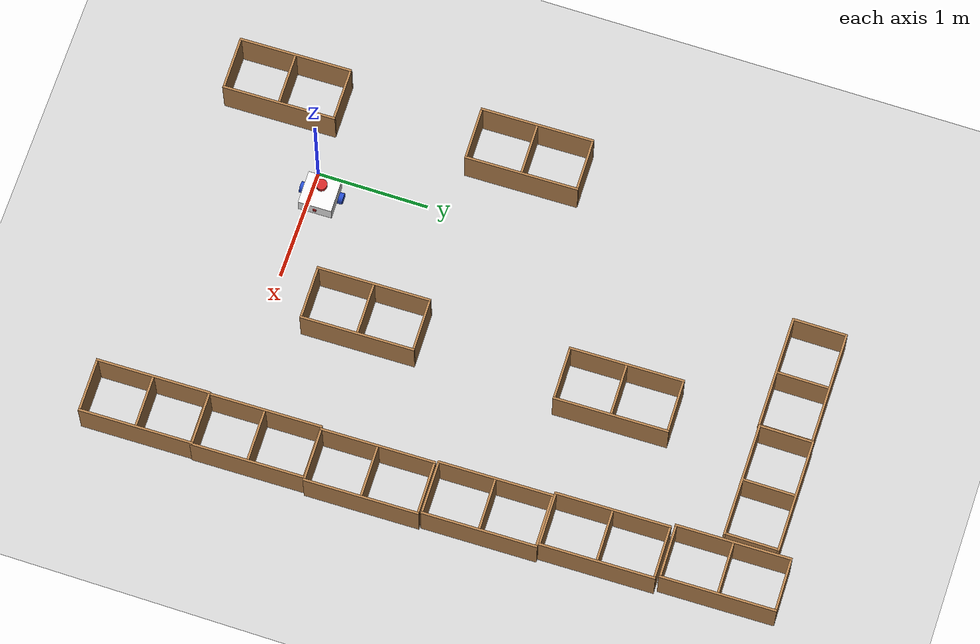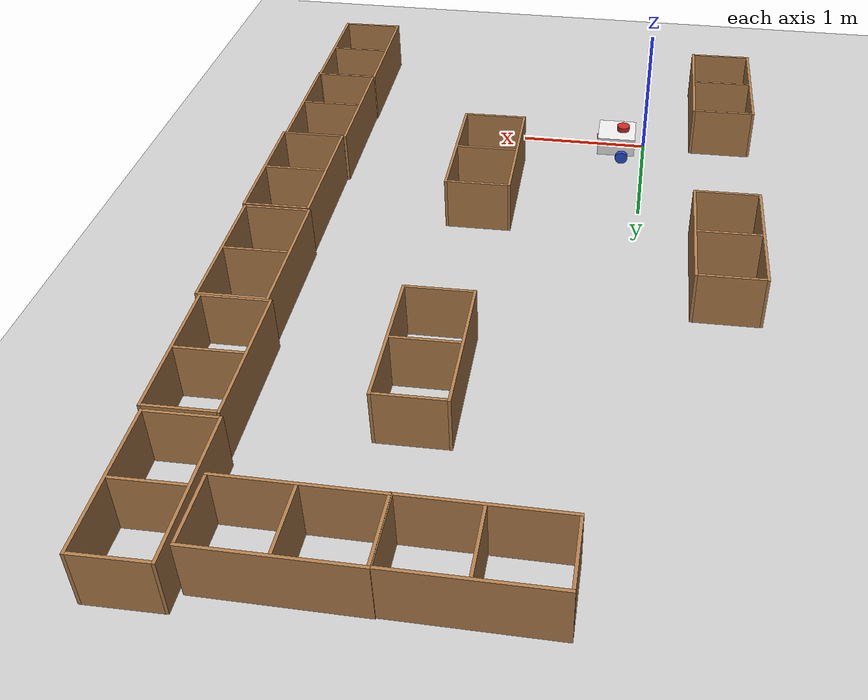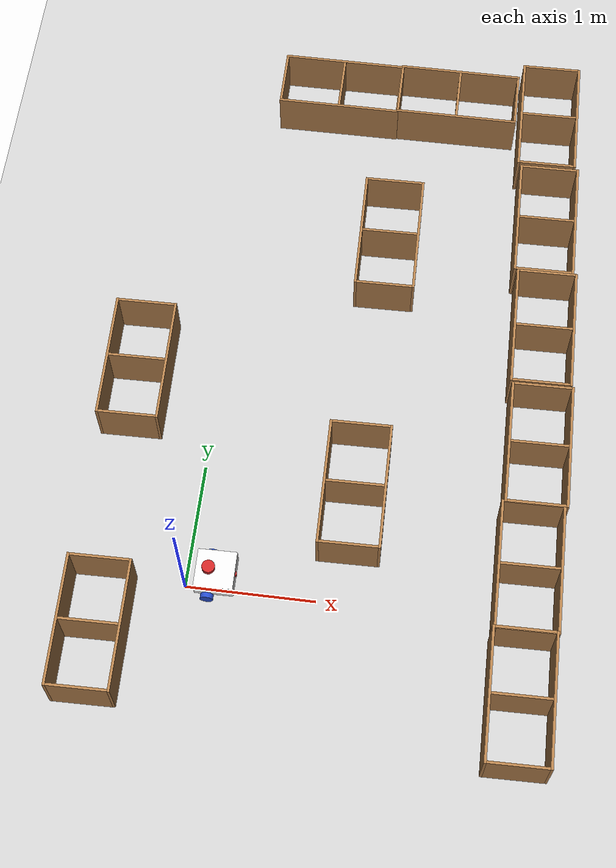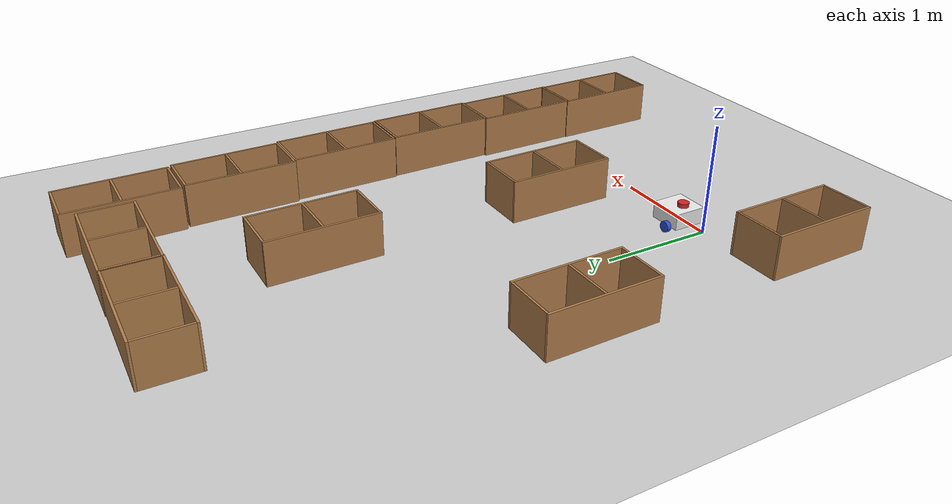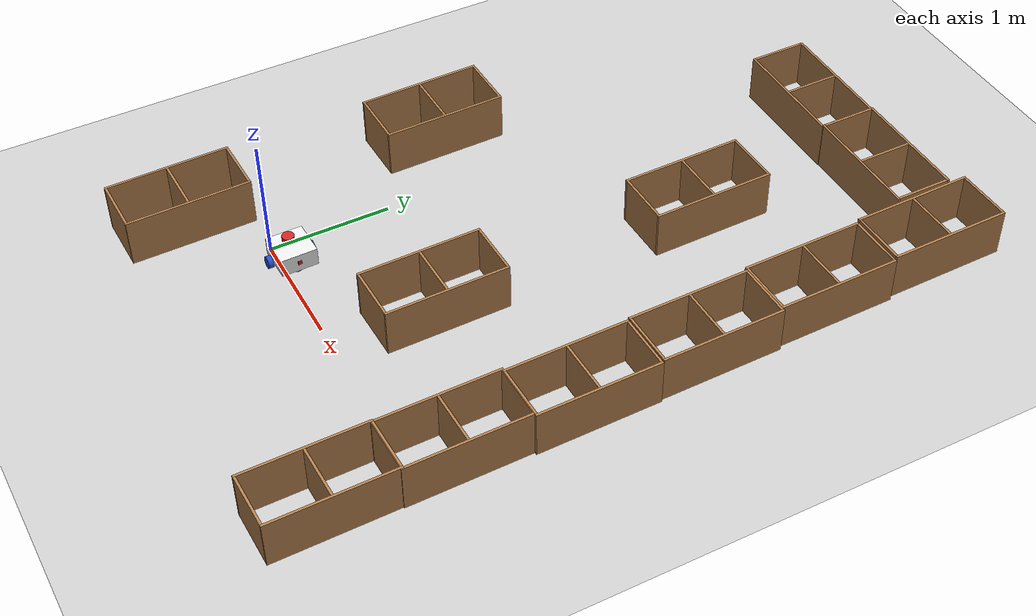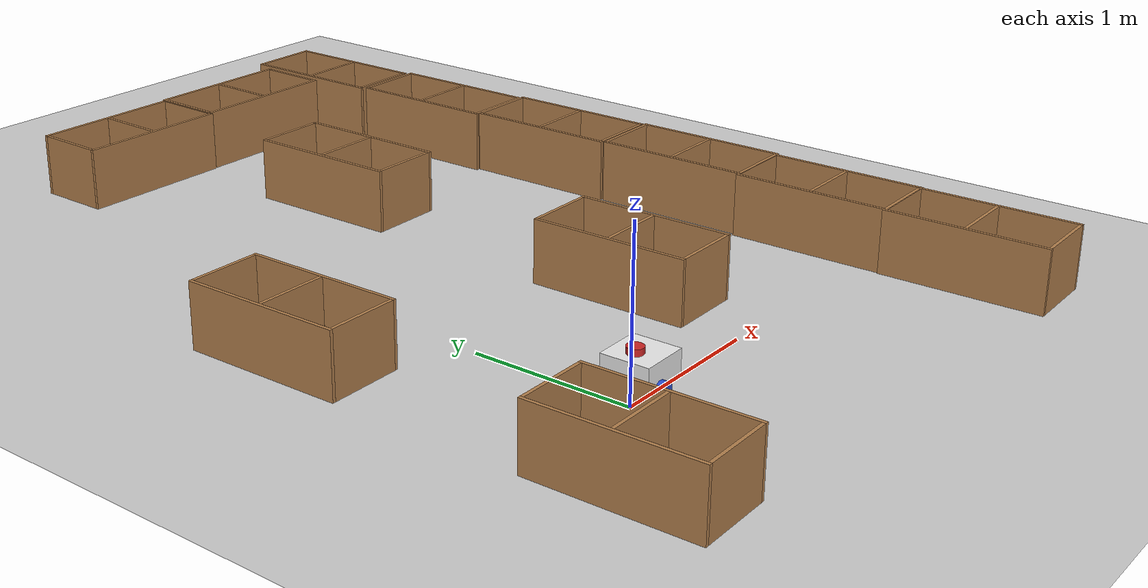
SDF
<sdf version="1.7">
 <world name="default">
  <model name="ground_plane">
   <static>1</static>
   <link name="link">
    <collision name="collision">
     <geometry><plane><normal>0 0 1</normal><size>100 100</size></plane></geometry>
     <surface>
      <contact><collide_bitmask>65535</collide_bitmask></contact>
      <friction><ode><mu>100</mu><mu2>50</mu2></ode></friction>
     </surface>
    </collision>
    <visual name="visual">
     <cast_shadows>0</cast_shadows>
     <geometry><plane><normal>0 0 1</normal><size>100 100</size></plane></geometry>
     <material>
      <script><uri>file://media/materials/scripts/gazebo.material</uri><name>Gazebo/Grey</name></script>
     </material>
    </visual>
   </link>
  </model>
  <model name="my_bot">
   <link name="base_link">
    <inertial>
     <pose>0.055714 0 0.078571 0 -0 0</pose>
     <mass>0.7</mass>
     <inertia>
      <ixx>0.0064169</ixx>
      <ixy>0</ixy>
      <ixz>0.00118929</ixz>
      <iyy>0.00745405</iyy>
      <iyz>0</iyz>
      <izz>0.00876214</izz>
     </inertia>
    </inertial>
    <collision name="base_link_fixed_joint_lump__chassis_collision">
     <pose>0.05 0 0.075 0 -0 0</pose>
     <geometry><box><size>0.3 0.3 0.15</size></box></geometry>
    </collision>
    <collision name="base_link_fixed_joint_lump__caster_wheel_collision_1">
     <pose>0.14 0 0 0 -0 0</pose>
     <geometry><sphere><radius>0.05</radius></sphere></geometry>
     <surface><friction><ode><mu>0.001</mu><mu2>0.001</mu2></ode></friction></surface>
    </collision>
    <collision name="base_link_fixed_joint_lump__laser_frame_collision_2">
     <pose>0 0 0.175 0 -0 0</pose>
     <geometry><cylinder><length>0.04</length><radius>0.05</radius></cylinder></geometry>
    </collision>
    <visual name="base_link_fixed_joint_lump__chassis_visual">
     <pose>0.05 0 0.075 0 -0 0</pose>
     <geometry><box><size>0.3 0.3 0.15</size></box></geometry>
     <material>
      <script><name>Gazebo/White</name><uri>file://media/materials/scripts/gazebo.material</uri></script>
     </material>
    </visual>
    <visual name="base_link_fixed_joint_lump__camera_link_visual_1">
     <pose>0.205 0 0.08 0 -0 0</pose>
     <geometry><box><size>0.01 0.03 0.03</size></box></geometry>
     <material>
      <script><name>Gazebo/Red</name><uri>file://media/materials/scripts/gazebo.material</uri></script>
     </material>
    </visual>
    <visual name="base_link_fixed_joint_lump__caster_wheel_visual_2">
     <pose>0.14 0 0 0 -0 0</pose>
     <geometry><sphere><radius>0.05</radius></sphere></geometry>
     <material>
      <script><name>Gazebo/Black</name><uri>file://media/materials/scripts/gazebo.material</uri></script>
     </material>
    </visual>
    <visual name="base_link_fixed_joint_lump__laser_frame_visual_3">
     <pose>0 0 0.175 0 -0 0</pose>
     <geometry><cylinder><length>0.04</length><radius>0.05</radius></cylinder></geometry>
     <material>
      <script><name>Gazebo/Red</name><uri>file://media/materials/scripts/gazebo.material</uri></script>
     </material>
    </visual>
    <sensor name="camera" type="camera">
     <visualize>1</visualize>
     <update_rate>10</update_rate>
     <camera>
      <horizontal_fov>1.089</horizontal_fov>
      <image><format>R8G8B8</format><width>640</width><height>480</height></image>
      <clip><near>0.05</near><far>8</far></clip>
     </camera>
     <plugin name="camera_controller" filename="libgazebo_ros_camera.so">
      <frame_name>camera_link_optical</frame_name>
     </plugin>
     <pose>0.205 0 0.08 0 -0 0</pose>
    </sensor>
    <sensor name="laser" type="ray">
     <visualize>1</visualize>
     <update_rate>10</update_rate>
     <ray>
      <scan>
       <horizontal>
        <samples>360</samples>
        <min_angle>-3.14</min_angle>
        <max_angle>3.14</max_angle>
        <resolution>1</resolution>
       </horizontal>
       <vertical><samples>1</samples><min_angle>0</min_angle><max_angle>0</max_angle></vertical>
      </scan>
      <range><min>0.3</min><max>12</max></range>
     </ray>
     <plugin name="laser_controller" filename="libgazebo_ros_ray_sensor.so">
      <ros><argument>~/out:=scan</argument></ros>
      <output_type>sensor_msgs/LaserScan</output_type>
      <frame_name>laser_frame</frame_name>
     </plugin>
     <pose>0 0 0.175 0 -0 0</pose>
    </sensor>
   </link>
   <joint name="left_wheel_joint" type="revolute">
    <pose relative_to="base_link">0 0.175 0 -1.5708 0 0</pose>
    <parent>base_link</parent>
    <child>left_wheel</child>
    <axis>
     <xyz>0 0 1</xyz>
     <limit><lower>-1e+16</lower><upper>1e+16</upper></limit>
     <dynamics><spring_reference>0</spring_reference><spring_stiffness>0</spring_stiffness></dynamics>
    </axis>
   </joint>
   <link name="left_wheel">
    <pose relative_to="left_wheel_joint">0 0 0 0 -0 0</pose>
    <inertial>
     <mass>0.1</mass>
     <inertia>
      <ixx>7.58333e-05</ixx>
      <ixy>0</ixy>
      <ixz>0</ixz>
      <iyy>7.58333e-05</iyy>
      <iyz>0</iyz>
      <izz>0.000125</izz>
     </inertia>
    </inertial>
    <collision name="left_wheel_collision">
     <geometry><cylinder><length>0.04</length><radius>0.05</radius></cylinder></geometry>
    </collision>
    <visual name="left_wheel_visual">
     <geometry><cylinder><length>0.04</length><radius>0.05</radius></cylinder></geometry>
     <material>
      <script><name>Gazebo/Blue</name><uri>file://media/materials/scripts/gazebo.material</uri></script>
     </material>
    </visual>
   </link>
   <joint name="right_wheel_joint" type="revolute">
    <pose relative_to="base_link">0 -0.175 0 1.5708 -0 0</pose>
    <parent>base_link</parent>
    <child>right_wheel</child>
    <axis>
     <xyz>0 0 -1</xyz>
     <limit><lower>-1e+16</lower><upper>1e+16</upper></limit>
     <dynamics><spring_reference>0</spring_reference><spring_stiffness>0</spring_stiffness></dynamics>
    </axis>
   </joint>
   <link name="right_wheel">
    <pose relative_to="right_wheel_joint">0 0 0 0 -0 0</pose>
    <inertial>
     <mass>0.1</mass>
     <inertia>
      <ixx>7.58333e-05</ixx>
      <ixy>0</ixy>
      <ixz>0</ixz>
      <iyy>7.58333e-05</iyy>
      <iyz>0</iyz>
      <izz>0.000125</izz>
     </inertia>
    </inertial>
    <collision name="right_wheel_collision">
     <geometry><cylinder><length>0.04</length><radius>0.05</radius></cylinder></geometry>
    </collision>
    <visual name="right_wheel_visual">
     <geometry><cylinder><length>0.04</length><radius>0.05</radius></cylinder></geometry>
     <material>
      <script><name>Gazebo/Blue</name><uri>file://media/materials/scripts/gazebo.material</uri></script>
     </material>
    </visual>
   </link>
   <static>0</static>
   <plugin name="diff_drive" filename="libgazebo_ros_diff_drive.so">
    <left_joint>left_wheel_joint</left_joint>
    <right_joint>right_wheel_joint</right_joint>
    <wheel_separation>0.35</wheel_separation>
    <wheel_diameter>0.1</wheel_diameter>
    <max_wheel_torque>200</max_wheel_torque>
    <max_wheel_acceleration>10.0</max_wheel_acceleration>
    <odometry_frame>odom</odometry_frame>
    <robot_base_frame>base_link</robot_base_frame>
    <publish_odom>1</publish_odom>
    <publish_odom_tf>1</publish_odom_tf>
    <publish_wheel_tf>1</publish_wheel_tf>
   </plugin>
   <pose>0.175855 0.097688 0.049998 -1.9e-05 -1.6e-05 0.014368</pose>
  </model>
  <model name="cabinet_clone_0_clone_3">
   <static>1</static>
   <link name="cabinet_bottom_plate">
    <inertial>
     <pose>0 0 -1 0 -0 0</pose>
     <inertia><ixx>2.05</ixx><ixy>0</ixy><ixz>0</ixz><iyy>2.05</iyy><iyz>0</iyz><izz>2.05</izz></inertia>
     <mass>25</mass>
    </inertial>
    <collision name="cabinet_bottom_plate_geom">
     <pose>0 0 0.01 0 -0 0</pose>
     <geometry><box><size>0.45 0.45 0.02</size></box></geometry>
    </collision>
    <visual name="cabinet_bottom_plate_geom_visual">
     <pose>0 0 0.01 0 -0 0</pose>
     <geometry><box><size>0.45 0.45 0.02</size></box></geometry>
     <material>
      <script><uri>file://media/materials/scripts/gazebo.material</uri><name>Gazebo/Wood</name></script>
     </material>
    </visual>
    <collision name="cabinet_bottom_plate_geom_cabinet_back_plate">
     <pose>0.235 0 0.51 0 -0 0</pose>
     <geometry><box><size>0.02 0.45 1.02</size></box></geometry>
    </collision>
    <visual name="cabinet_bottom_plate_geom_cabinet_back_plate_visual">
     <pose>0.235 0 0.51 0 -0 0</pose>
     <geometry><box><size>0.02 0.45 1.02</size></box></geometry>
     <material>
      <script><uri>file://media/materials/scripts/gazebo.material</uri><name>Gazebo/Wood</name></script>
     </material>
    </visual>
    <collision name="cabinet_bottom_plate_geom_cabinet_left_plate">
     <pose>0 0.235 0.51 0 -0 0</pose>
     <geometry><box><size>0.45 0.02 1.02</size></box></geometry>
    </collision>
    <visual name="cabinet_bottom_plate_geom_cabinet_left_plate_visual">
     <pose>0 0.235 0.51 0 -0 0</pose>
     <geometry><box><size>0.45 0.02 1.02</size></box></geometry>
     <material>
      <script><uri>file://media/materials/scripts/gazebo.material</uri><name>Gazebo/Wood</name></script>
     </material>
    </visual>
    <collision name="cabinet_bottom_plate_geom_cabinet_middle_plate">
     <pose>0 0 0.51 0 -0 0</pose>
     <geometry><box><size>0.45 0.45 0.02</size></box></geometry>
    </collision>
    <visual name="cabinet_bottom_plate_geom_cabinet_middle_plate_visual">
     <pose>0 0 0.51 0 -0 0</pose>
     <geometry><box><size>0.45 0.45 0.02</size></box></geometry>
     <material>
      <script><uri>file://media/materials/scripts/gazebo.material</uri><name>Gazebo/Wood</name></script>
     </material>
    </visual>
    <collision name="cabinet_bottom_plate_geom_cabinet_right_plate">
     <pose>0 -0.235 0.51 0 -0 0</pose>
     <geometry><box><size>0.45 0.02 1.02</size></box></geometry>
    </collision>
    <visual name="cabinet_bottom_plate_geom_cabinet_right_plate_visual">
     <pose>0 -0.235 0.51 0 -0 0</pose>
     <geometry><box><size>0.45 0.02 1.02</size></box></geometry>
     <material>
      <script><uri>file://media/materials/scripts/gazebo.material</uri><name>Gazebo/Wood</name></script>
     </material>
    </visual>
    <collision name="cabinet_bottom_plate_geom_cabinet_top_plate">
     <pose>0 0 1.01 0 -0 0</pose>
     <geometry><box><size>0.45 0.45 0.02</size></box></geometry>
    </collision>
    <visual name="cabinet_bottom_plate_geom_cabinet_top_plate_visual">
     <pose>0 0 1.01 0 -0 0</pose>
     <geometry><box><size>0.45 0.45 0.02</size></box></geometry>
     <material>
      <script><uri>file://media/materials/scripts/gazebo.material</uri><name>Gazebo/Wood</name></script>
     </material>
    </visual>
   </link>
   <pose>0.146838 4.55961 0.169718 3.14159 1.5658 3.14159</pose>
  </model>
  <model name="cabinet_clone_0_clone_4">
   <static>1</static>
   <link name="cabinet_bottom_plate">
    <inertial>
     <pose>0 0 -1 0 -0 0</pose>
     <inertia><ixx>2.05</ixx><ixy>0</ixy><ixz>0</ixz><iyy>2.05</iyy><iyz>0</iyz><izz>2.05</izz></inertia>
     <mass>25</mass>
    </inertial>
    <collision name="cabinet_bottom_plate_geom">
     <pose>0 0 0.01 0 -0 0</pose>
     <geometry><box><size>0.45 0.45 0.02</size></box></geometry>
    </collision>
    <visual name="cabinet_bottom_plate_geom_visual">
     <pose>0 0 0.01 0 -0 0</pose>
     <geometry><box><size>0.45 0.45 0.02</size></box></geometry>
     <material>
      <script><uri>file://media/materials/scripts/gazebo.material</uri><name>Gazebo/Wood</name></script>
     </material>
    </visual>
    <collision name="cabinet_bottom_plate_geom_cabinet_back_plate">
     <pose>0.235 0 0.51 0 -0 0</pose>
     <geometry><box><size>0.02 0.45 1.02</size></box></geometry>
    </collision>
    <visual name="cabinet_bottom_plate_geom_cabinet_back_plate_visual">
     <pose>0.235 0 0.51 0 -0 0</pose>
     <geometry><box><size>0.02 0.45 1.02</size></box></geometry>
     <material>
      <script><uri>file://media/materials/scripts/gazebo.material</uri><name>Gazebo/Wood</name></script>
     </material>
    </visual>
    <collision name="cabinet_bottom_plate_geom_cabinet_left_plate">
     <pose>0 0.235 0.51 0 -0 0</pose>
     <geometry><box><size>0.45 0.02 1.02</size></box></geometry>
    </collision>
    <visual name="cabinet_bottom_plate_geom_cabinet_left_plate_visual">
     <pose>0 0.235 0.51 0 -0 0</pose>
     <geometry><box><size>0.45 0.02 1.02</size></box></geometry>
     <material>
      <script><uri>file://media/materials/scripts/gazebo.material</uri><name>Gazebo/Wood</name></script>
     </material>
    </visual>
    <collision name="cabinet_bottom_plate_geom_cabinet_middle_plate">
     <pose>0 0 0.51 0 -0 0</pose>
     <geometry><box><size>0.45 0.45 0.02</size></box></geometry>
    </collision>
    <visual name="cabinet_bottom_plate_geom_cabinet_middle_plate_visual">
     <pose>0 0 0.51 0 -0 0</pose>
     <geometry><box><size>0.45 0.45 0.02</size></box></geometry>
     <material>
      <script><uri>file://media/materials/scripts/gazebo.material</uri><name>Gazebo/Wood</name></script>
     </material>
    </visual>
    <collision name="cabinet_bottom_plate_geom_cabinet_right_plate">
     <pose>0 -0.235 0.51 0 -0 0</pose>
     <geometry><box><size>0.45 0.02 1.02</size></box></geometry>
    </collision>
    <visual name="cabinet_bottom_plate_geom_cabinet_right_plate_visual">
     <pose>0 -0.235 0.51 0 -0 0</pose>
     <geometry><box><size>0.45 0.02 1.02</size></box></geometry>
     <material>
      <script><uri>file://media/materials/scripts/gazebo.material</uri><name>Gazebo/Wood</name></script>
     </material>
    </visual>
    <collision name="cabinet_bottom_plate_geom_cabinet_top_plate">
     <pose>0 0 1.01 0 -0 0</pose>
     <geometry><box><size>0.45 0.45 0.02</size></box></geometry>
    </collision>
    <visual name="cabinet_bottom_plate_geom_cabinet_top_plate_visual">
     <pose>0 0 1.01 0 -0 0</pose>
     <geometry><box><size>0.45 0.45 0.02</size></box></geometry>
     <material>
      <script><uri>file://media/materials/scripts/gazebo.material</uri><name>Gazebo/Wood</name></script>
     </material>
    </visual>
   </link>
   <pose>1.15299 4.56618 0.169718 3.14159 1.5658 3.14159</pose>
  </model>
  <model name="cabinet_clone_5_clone_7">
   <static>1</static>
   <link name="cabinet_bottom_plate">
    <inertial>
     <pose>0 0 -1 0 -0 0</pose>
     <inertia><ixx>2.05</ixx><ixy>0</ixy><ixz>0</ixz><iyy>2.05</iyy><iyz>0</iyz><izz>2.05</izz></inertia>
     <mass>25</mass>
    </inertial>
    <collision name="cabinet_bottom_plate_geom">
     <pose>0 0 0.01 0 -0 0</pose>
     <geometry><box><size>0.45 0.45 0.02</size></box></geometry>
    </collision>
    <visual name="cabinet_bottom_plate_geom_visual">
     <pose>0 0 0.01 0 -0 0</pose>
     <geometry><box><size>0.45 0.45 0.02</size></box></geometry>
     <material>
      <script><uri>file://media/materials/scripts/gazebo.material</uri><name>Gazebo/Wood</name></script>
     </material>
    </visual>
    <collision name="cabinet_bottom_plate_geom_cabinet_back_plate">
     <pose>0.235 0 0.51 0 -0 0</pose>
     <geometry><box><size>0.02 0.45 1.02</size></box></geometry>
    </collision>
    <visual name="cabinet_bottom_plate_geom_cabinet_back_plate_visual">
     <pose>0.235 0 0.51 0 -0 0</pose>
     <geometry><box><size>0.02 0.45 1.02</size></box></geometry>
     <material>
      <script><uri>file://media/materials/scripts/gazebo.material</uri><name>Gazebo/Wood</name></script>
     </material>
    </visual>
    <collision name="cabinet_bottom_plate_geom_cabinet_left_plate">
     <pose>0 0.235 0.51 0 -0 0</pose>
     <geometry><box><size>0.45 0.02 1.02</size></box></geometry>
    </collision>
    <visual name="cabinet_bottom_plate_geom_cabinet_left_plate_visual">
     <pose>0 0.235 0.51 0 -0 0</pose>
     <geometry><box><size>0.45 0.02 1.02</size></box></geometry>
     <material>
      <script><uri>file://media/materials/scripts/gazebo.material</uri><name>Gazebo/Wood</name></script>
     </material>
    </visual>
    <collision name="cabinet_bottom_plate_geom_cabinet_middle_plate">
     <pose>0 0 0.51 0 -0 0</pose>
     <geometry><box><size>0.45 0.45 0.02</size></box></geometry>
    </collision>
    <visual name="cabinet_bottom_plate_geom_cabinet_middle_plate_visual">
     <pose>0 0 0.51 0 -0 0</pose>
     <geometry><box><size>0.45 0.45 0.02</size></box></geometry>
     <material>
      <script><uri>file://media/materials/scripts/gazebo.material</uri><name>Gazebo/Wood</name></script>
     </material>
    </visual>
    <collision name="cabinet_bottom_plate_geom_cabinet_right_plate">
     <pose>0 -0.235 0.51 0 -0 0</pose>
     <geometry><box><size>0.45 0.02 1.02</size></box></geometry>
    </collision>
    <visual name="cabinet_bottom_plate_geom_cabinet_right_plate_visual">
     <pose>0 -0.235 0.51 0 -0 0</pose>
     <geometry><box><size>0.45 0.02 1.02</size></box></geometry>
     <material>
      <script><uri>file://media/materials/scripts/gazebo.material</uri><name>Gazebo/Wood</name></script>
     </material>
    </visual>
    <collision name="cabinet_bottom_plate_geom_cabinet_top_plate">
     <pose>0 0 1.01 0 -0 0</pose>
     <geometry><box><size>0.45 0.45 0.02</size></box></geometry>
    </collision>
    <visual name="cabinet_bottom_plate_geom_cabinet_top_plate_visual">
     <pose>0 0 1.01 0 -0 0</pose>
     <geometry><box><size>0.45 0.45 0.02</size></box></geometry>
     <material>
      <script><uri>file://media/materials/scripts/gazebo.material</uri><name>Gazebo/Wood</name></script>
     </material>
    </visual>
   </link>
   <pose>2.57781 -1.17139 0.169718 1.55548 1.5658 -3.14159</pose>
  </model>
  <model name="cabinet_clone_5_clone_8">
   <static>1</static>
   <link name="cabinet_bottom_plate">
    <inertial>
     <pose>0 0 -1 0 -0 0</pose>
     <inertia><ixx>2.05</ixx><ixy>0</ixy><ixz>0</ixz><iyy>2.05</iyy><iyz>0</iyz><izz>2.05</izz></inertia>
     <mass>25</mass>
    </inertial>
    <collision name="cabinet_bottom_plate_geom">
     <pose>0 0 0.01 0 -0 0</pose>
     <geometry><box><size>0.45 0.45 0.02</size></box></geometry>
    </collision>
    <visual name="cabinet_bottom_plate_geom_visual">
     <pose>0 0 0.01 0 -0 0</pose>
     <geometry><box><size>0.45 0.45 0.02</size></box></geometry>
     <material>
      <script><uri>file://media/materials/scripts/gazebo.material</uri><name>Gazebo/Wood</name></script>
     </material>
    </visual>
    <collision name="cabinet_bottom_plate_geom_cabinet_back_plate">
     <pose>0.235 0 0.51 0 -0 0</pose>
     <geometry><box><size>0.02 0.45 1.02</size></box></geometry>
    </collision>
    <visual name="cabinet_bottom_plate_geom_cabinet_back_plate_visual">
     <pose>0.235 0 0.51 0 -0 0</pose>
     <geometry><box><size>0.02 0.45 1.02</size></box></geometry>
     <material>
      <script><uri>file://media/materials/scripts/gazebo.material</uri><name>Gazebo/Wood</name></script>
     </material>
    </visual>
    <collision name="cabinet_bottom_plate_geom_cabinet_left_plate">
     <pose>0 0.235 0.51 0 -0 0</pose>
     <geometry><box><size>0.45 0.02 1.02</size></box></geometry>
    </collision>
    <visual name="cabinet_bottom_plate_geom_cabinet_left_plate_visual">
     <pose>0 0.235 0.51 0 -0 0</pose>
     <geometry><box><size>0.45 0.02 1.02</size></box></geometry>
     <material>
      <script><uri>file://media/materials/scripts/gazebo.material</uri><name>Gazebo/Wood</name></script>
     </material>
    </visual>
    <collision name="cabinet_bottom_plate_geom_cabinet_middle_plate">
     <pose>0 0 0.51 0 -0 0</pose>
     <geometry><box><size>0.45 0.45 0.02</size></box></geometry>
    </collision>
    <visual name="cabinet_bottom_plate_geom_cabinet_middle_plate_visual">
     <pose>0 0 0.51 0 -0 0</pose>
     <geometry><box><size>0.45 0.45 0.02</size></box></geometry>
     <material>
      <script><uri>file://media/materials/scripts/gazebo.material</uri><name>Gazebo/Wood</name></script>
     </material>
    </visual>
    <collision name="cabinet_bottom_plate_geom_cabinet_right_plate">
     <pose>0 -0.235 0.51 0 -0 0</pose>
     <geometry><box><size>0.45 0.02 1.02</size></box></geometry>
    </collision>
    <visual name="cabinet_bottom_plate_geom_cabinet_right_plate_visual">
     <pose>0 -0.235 0.51 0 -0 0</pose>
     <geometry><box><size>0.45 0.02 1.02</size></box></geometry>
     <material>
      <script><uri>file://media/materials/scripts/gazebo.material</uri><name>Gazebo/Wood</name></script>
     </material>
    </visual>
    <collision name="cabinet_bottom_plate_geom_cabinet_top_plate">
     <pose>0 0 1.01 0 -0 0</pose>
     <geometry><box><size>0.45 0.45 0.02</size></box></geometry>
    </collision>
    <visual name="cabinet_bottom_plate_geom_cabinet_top_plate_visual">
     <pose>0 0 1.01 0 -0 0</pose>
     <geometry><box><size>0.45 0.45 0.02</size></box></geometry>
     <material>
      <script><uri>file://media/materials/scripts/gazebo.material</uri><name>Gazebo/Wood</name></script>
     </material>
    </visual>
   </link>
   <pose>2.57125 -0.17739 0.169718 1.55548 1.5658 -3.14159</pose>
  </model>
  <model name="cabinet_clone_5_clone_9">
   <static>1</static>
   <link name="cabinet_bottom_plate">
    <inertial>
     <pose>0 0 -1 0 -0 0</pose>
     <inertia><ixx>2.05</ixx><ixy>0</ixy><ixz>0</ixz><iyy>2.05</iyy><iyz>0</iyz><izz>2.05</izz></inertia>
     <mass>25</mass>
    </inertial>
    <collision name="cabinet_bottom_plate_geom">
     <pose>0 0 0.01 0 -0 0</pose>
     <geometry><box><size>0.45 0.45 0.02</size></box></geometry>
    </collision>
    <visual name="cabinet_bottom_plate_geom_visual">
     <pose>0 0 0.01 0 -0 0</pose>
     <geometry><box><size>0.45 0.45 0.02</size></box></geometry>
     <material>
      <script><uri>file://media/materials/scripts/gazebo.material</uri><name>Gazebo/Wood</name></script>
     </material>
    </visual>
    <collision name="cabinet_bottom_plate_geom_cabinet_back_plate">
     <pose>0.235 0 0.51 0 -0 0</pose>
     <geometry><box><size>0.02 0.45 1.02</size></box></geometry>
    </collision>
    <visual name="cabinet_bottom_plate_geom_cabinet_back_plate_visual">
     <pose>0.235 0 0.51 0 -0 0</pose>
     <geometry><box><size>0.02 0.45 1.02</size></box></geometry>
     <material>
      <script><uri>file://media/materials/scripts/gazebo.material</uri><name>Gazebo/Wood</name></script>
     </material>
    </visual>
    <collision name="cabinet_bottom_plate_geom_cabinet_left_plate">
     <pose>0 0.235 0.51 0 -0 0</pose>
     <geometry><box><size>0.45 0.02 1.02</size></box></geometry>
    </collision>
    <visual name="cabinet_bottom_plate_geom_cabinet_left_plate_visual">
     <pose>0 0.235 0.51 0 -0 0</pose>
     <geometry><box><size>0.45 0.02 1.02</size></box></geometry>
     <material>
      <script><uri>file://media/materials/scripts/gazebo.material</uri><name>Gazebo/Wood</name></script>
     </material>
    </visual>
    <collision name="cabinet_bottom_plate_geom_cabinet_middle_plate">
     <pose>0 0 0.51 0 -0 0</pose>
     <geometry><box><size>0.45 0.45 0.02</size></box></geometry>
    </collision>
    <visual name="cabinet_bottom_plate_geom_cabinet_middle_plate_visual">
     <pose>0 0 0.51 0 -0 0</pose>
     <geometry><box><size>0.45 0.45 0.02</size></box></geometry>
     <material>
      <script><uri>file://media/materials/scripts/gazebo.material</uri><name>Gazebo/Wood</name></script>
     </material>
    </visual>
    <collision name="cabinet_bottom_plate_geom_cabinet_right_plate">
     <pose>0 -0.235 0.51 0 -0 0</pose>
     <geometry><box><size>0.45 0.02 1.02</size></box></geometry>
    </collision>
    <visual name="cabinet_bottom_plate_geom_cabinet_right_plate_visual">
     <pose>0 -0.235 0.51 0 -0 0</pose>
     <geometry><box><size>0.45 0.02 1.02</size></box></geometry>
     <material>
      <script><uri>file://media/materials/scripts/gazebo.material</uri><name>Gazebo/Wood</name></script>
     </material>
    </visual>
    <collision name="cabinet_bottom_plate_geom_cabinet_top_plate">
     <pose>0 0 1.01 0 -0 0</pose>
     <geometry><box><size>0.45 0.45 0.02</size></box></geometry>
    </collision>
    <visual name="cabinet_bottom_plate_geom_cabinet_top_plate_visual">
     <pose>0 0 1.01 0 -0 0</pose>
     <geometry><box><size>0.45 0.45 0.02</size></box></geometry>
     <material>
      <script><uri>file://media/materials/scripts/gazebo.material</uri><name>Gazebo/Wood</name></script>
     </material>
    </visual>
   </link>
   <pose>2.57673 0.828816 0.169718 1.55548 1.5658 -3.14159</pose>
  </model>
  <model name="cabinet_clone_5_clone_10">
   <static>1</static>
   <link name="cabinet_bottom_plate">
    <inertial>
     <pose>0 0 -1 0 -0 0</pose>
     <inertia><ixx>2.05</ixx><ixy>0</ixy><ixz>0</ixz><iyy>2.05</iyy><iyz>0</iyz><izz>2.05</izz></inertia>
     <mass>25</mass>
    </inertial>
    <collision name="cabinet_bottom_plate_geom">
     <pose>0 0 0.01 0 -0 0</pose>
     <geometry><box><size>0.45 0.45 0.02</size></box></geometry>
    </collision>
    <visual name="cabinet_bottom_plate_geom_visual">
     <pose>0 0 0.01 0 -0 0</pose>
     <geometry><box><size>0.45 0.45 0.02</size></box></geometry>
     <material>
      <script><uri>file://media/materials/scripts/gazebo.material</uri><name>Gazebo/Wood</name></script>
     </material>
    </visual>
    <collision name="cabinet_bottom_plate_geom_cabinet_back_plate">
     <pose>0.235 0 0.51 0 -0 0</pose>
     <geometry><box><size>0.02 0.45 1.02</size></box></geometry>
    </collision>
    <visual name="cabinet_bottom_plate_geom_cabinet_back_plate_visual">
     <pose>0.235 0 0.51 0 -0 0</pose>
     <geometry><box><size>0.02 0.45 1.02</size></box></geometry>
     <material>
      <script><uri>file://media/materials/scripts/gazebo.material</uri><name>Gazebo/Wood</name></script>
     </material>
    </visual>
    <collision name="cabinet_bottom_plate_geom_cabinet_left_plate">
     <pose>0 0.235 0.51 0 -0 0</pose>
     <geometry><box><size>0.45 0.02 1.02</size></box></geometry>
    </collision>
    <visual name="cabinet_bottom_plate_geom_cabinet_left_plate_visual">
     <pose>0 0.235 0.51 0 -0 0</pose>
     <geometry><box><size>0.45 0.02 1.02</size></box></geometry>
     <material>
      <script><uri>file://media/materials/scripts/gazebo.material</uri><name>Gazebo/Wood</name></script>
     </material>
    </visual>
    <collision name="cabinet_bottom_plate_geom_cabinet_middle_plate">
     <pose>0 0 0.51 0 -0 0</pose>
     <geometry><box><size>0.45 0.45 0.02</size></box></geometry>
    </collision>
    <visual name="cabinet_bottom_plate_geom_cabinet_middle_plate_visual">
     <pose>0 0 0.51 0 -0 0</pose>
     <geometry><box><size>0.45 0.45 0.02</size></box></geometry>
     <material>
      <script><uri>file://media/materials/scripts/gazebo.material</uri><name>Gazebo/Wood</name></script>
     </material>
    </visual>
    <collision name="cabinet_bottom_plate_geom_cabinet_right_plate">
     <pose>0 -0.235 0.51 0 -0 0</pose>
     <geometry><box><size>0.45 0.02 1.02</size></box></geometry>
    </collision>
    <visual name="cabinet_bottom_plate_geom_cabinet_right_plate_visual">
     <pose>0 -0.235 0.51 0 -0 0</pose>
     <geometry><box><size>0.45 0.02 1.02</size></box></geometry>
     <material>
      <script><uri>file://media/materials/scripts/gazebo.material</uri><name>Gazebo/Wood</name></script>
     </material>
    </visual>
    <collision name="cabinet_bottom_plate_geom_cabinet_top_plate">
     <pose>0 0 1.01 0 -0 0</pose>
     <geometry><box><size>0.45 0.45 0.02</size></box></geometry>
    </collision>
    <visual name="cabinet_bottom_plate_geom_cabinet_top_plate_visual">
     <pose>0 0 1.01 0 -0 0</pose>
     <geometry><box><size>0.45 0.45 0.02</size></box></geometry>
     <material>
      <script><uri>file://media/materials/scripts/gazebo.material</uri><name>Gazebo/Wood</name></script>
     </material>
    </visual>
   </link>
   <pose>2.54567 1.85902 0.169718 1.55548 1.5658 -3.14159</pose>
  </model>
  <model name="cabinet_clone_5_clone_11">
   <static>1</static>
   <link name="cabinet_bottom_plate">
    <inertial>
     <pose>0 0 -1 0 -0 0</pose>
     <inertia><ixx>2.05</ixx><ixy>0</ixy><ixz>0</ixz><iyy>2.05</iyy><iyz>0</iyz><izz>2.05</izz></inertia>
     <mass>25</mass>
    </inertial>
    <collision name="cabinet_bottom_plate_geom">
     <pose>0 0 0.01 0 -0 0</pose>
     <geometry><box><size>0.45 0.45 0.02</size></box></geometry>
    </collision>
    <visual name="cabinet_bottom_plate_geom_visual">
     <pose>0 0 0.01 0 -0 0</pose>
     <geometry><box><size>0.45 0.45 0.02</size></box></geometry>
     <material>
      <script><uri>file://media/materials/scripts/gazebo.material</uri><name>Gazebo/Wood</name></script>
     </material>
    </visual>
    <collision name="cabinet_bottom_plate_geom_cabinet_back_plate">
     <pose>0.235 0 0.51 0 -0 0</pose>
     <geometry><box><size>0.02 0.45 1.02</size></box></geometry>
    </collision>
    <visual name="cabinet_bottom_plate_geom_cabinet_back_plate_visual">
     <pose>0.235 0 0.51 0 -0 0</pose>
     <geometry><box><size>0.02 0.45 1.02</size></box></geometry>
     <material>
      <script><uri>file://media/materials/scripts/gazebo.material</uri><name>Gazebo/Wood</name></script>
     </material>
    </visual>
    <collision name="cabinet_bottom_plate_geom_cabinet_left_plate">
     <pose>0 0.235 0.51 0 -0 0</pose>
     <geometry><box><size>0.45 0.02 1.02</size></box></geometry>
    </collision>
    <visual name="cabinet_bottom_plate_geom_cabinet_left_plate_visual">
     <pose>0 0.235 0.51 0 -0 0</pose>
     <geometry><box><size>0.45 0.02 1.02</size></box></geometry>
     <material>
      <script><uri>file://media/materials/scripts/gazebo.material</uri><name>Gazebo/Wood</name></script>
     </material>
    </visual>
    <collision name="cabinet_bottom_plate_geom_cabinet_middle_plate">
     <pose>0 0 0.51 0 -0 0</pose>
     <geometry><box><size>0.45 0.45 0.02</size></box></geometry>
    </collision>
    <visual name="cabinet_bottom_plate_geom_cabinet_middle_plate_visual">
     <pose>0 0 0.51 0 -0 0</pose>
     <geometry><box><size>0.45 0.45 0.02</size></box></geometry>
     <material>
      <script><uri>file://media/materials/scripts/gazebo.material</uri><name>Gazebo/Wood</name></script>
     </material>
    </visual>
    <collision name="cabinet_bottom_plate_geom_cabinet_right_plate">
     <pose>0 -0.235 0.51 0 -0 0</pose>
     <geometry><box><size>0.45 0.02 1.02</size></box></geometry>
    </collision>
    <visual name="cabinet_bottom_plate_geom_cabinet_right_plate_visual">
     <pose>0 -0.235 0.51 0 -0 0</pose>
     <geometry><box><size>0.45 0.02 1.02</size></box></geometry>
     <material>
      <script><uri>file://media/materials/scripts/gazebo.material</uri><name>Gazebo/Wood</name></script>
     </material>
    </visual>
    <collision name="cabinet_bottom_plate_geom_cabinet_top_plate">
     <pose>0 0 1.01 0 -0 0</pose>
     <geometry><box><size>0.45 0.45 0.02</size></box></geometry>
    </collision>
    <visual name="cabinet_bottom_plate_geom_cabinet_top_plate_visual">
     <pose>0 0 1.01 0 -0 0</pose>
     <geometry><box><size>0.45 0.45 0.02</size></box></geometry>
     <material>
      <script><uri>file://media/materials/scripts/gazebo.material</uri><name>Gazebo/Wood</name></script>
     </material>
    </visual>
   </link>
   <pose>2.50258 2.87703 0.169718 1.55548 1.5658 -3.14159</pose>
  </model>
  <model name="cabinet_clone_5_clone_12">
   <static>1</static>
   <link name="cabinet_bottom_plate">
    <inertial>
     <pose>0 0 -1 0 -0 0</pose>
     <inertia><ixx>2.05</ixx><ixy>0</ixy><ixz>0</ixz><iyy>2.05</iyy><iyz>0</iyz><izz>2.05</izz></inertia>
     <mass>25</mass>
    </inertial>
    <collision name="cabinet_bottom_plate_geom">
     <pose>0 0 0.01 0 -0 0</pose>
     <geometry><box><size>0.45 0.45 0.02</size></box></geometry>
    </collision>
    <visual name="cabinet_bottom_plate_geom_visual">
     <pose>0 0 0.01 0 -0 0</pose>
     <geometry><box><size>0.45 0.45 0.02</size></box></geometry>
     <material>
      <script><uri>file://media/materials/scripts/gazebo.material</uri><name>Gazebo/Wood</name></script>
     </material>
    </visual>
    <collision name="cabinet_bottom_plate_geom_cabinet_back_plate">
     <pose>0.235 0 0.51 0 -0 0</pose>
     <geometry><box><size>0.02 0.45 1.02</size></box></geometry>
    </collision>
    <visual name="cabinet_bottom_plate_geom_cabinet_back_plate_visual">
     <pose>0.235 0 0.51 0 -0 0</pose>
     <geometry><box><size>0.02 0.45 1.02</size></box></geometry>
     <material>
      <script><uri>file://media/materials/scripts/gazebo.material</uri><name>Gazebo/Wood</name></script>
     </material>
    </visual>
    <collision name="cabinet_bottom_plate_geom_cabinet_left_plate">
     <pose>0 0.235 0.51 0 -0 0</pose>
     <geometry><box><size>0.45 0.02 1.02</size></box></geometry>
    </collision>
    <visual name="cabinet_bottom_plate_geom_cabinet_left_plate_visual">
     <pose>0 0.235 0.51 0 -0 0</pose>
     <geometry><box><size>0.45 0.02 1.02</size></box></geometry>
     <material>
      <script><uri>file://media/materials/scripts/gazebo.material</uri><name>Gazebo/Wood</name></script>
     </material>
    </visual>
    <collision name="cabinet_bottom_plate_geom_cabinet_middle_plate">
     <pose>0 0 0.51 0 -0 0</pose>
     <geometry><box><size>0.45 0.45 0.02</size></box></geometry>
    </collision>
    <visual name="cabinet_bottom_plate_geom_cabinet_middle_plate_visual">
     <pose>0 0 0.51 0 -0 0</pose>
     <geometry><box><size>0.45 0.45 0.02</size></box></geometry>
     <material>
      <script><uri>file://media/materials/scripts/gazebo.material</uri><name>Gazebo/Wood</name></script>
     </material>
    </visual>
    <collision name="cabinet_bottom_plate_geom_cabinet_right_plate">
     <pose>0 -0.235 0.51 0 -0 0</pose>
     <geometry><box><size>0.45 0.02 1.02</size></box></geometry>
    </collision>
    <visual name="cabinet_bottom_plate_geom_cabinet_right_plate_visual">
     <pose>0 -0.235 0.51 0 -0 0</pose>
     <geometry><box><size>0.45 0.02 1.02</size></box></geometry>
     <material>
      <script><uri>file://media/materials/scripts/gazebo.material</uri><name>Gazebo/Wood</name></script>
     </material>
    </visual>
    <collision name="cabinet_bottom_plate_geom_cabinet_top_plate">
     <pose>0 0 1.01 0 -0 0</pose>
     <geometry><box><size>0.45 0.45 0.02</size></box></geometry>
    </collision>
    <visual name="cabinet_bottom_plate_geom_cabinet_top_plate_visual">
     <pose>0 0 1.01 0 -0 0</pose>
     <geometry><box><size>0.45 0.45 0.02</size></box></geometry>
     <material>
      <script><uri>file://media/materials/scripts/gazebo.material</uri><name>Gazebo/Wood</name></script>
     </material>
    </visual>
   </link>
   <pose>2.45933 3.91934 0.169718 1.55548 1.5658 -3.14159</pose>
  </model>
  <model name="cabinet_clone_5_clone_20">
   <static>1</static>
   <link name="cabinet_bottom_plate">
    <inertial>
     <pose>0 0 -1 0 -0 0</pose>
     <inertia><ixx>2.05</ixx><ixy>0</ixy><ixz>0</ixz><iyy>2.05</iyy><iyz>0</iyz><izz>2.05</izz></inertia>
     <mass>25</mass>
    </inertial>
    <collision name="cabinet_bottom_plate_geom">
     <pose>0 0 0.01 0 -0 0</pose>
     <geometry><box><size>0.45 0.45 0.02</size></box></geometry>
    </collision>
    <visual name="cabinet_bottom_plate_geom_visual">
     <pose>0 0 0.01 0 -0 0</pose>
     <geometry><box><size>0.45 0.45 0.02</size></box></geometry>
     <material>
      <script><uri>file://media/materials/scripts/gazebo.material</uri><name>Gazebo/Wood</name></script>
     </material>
    </visual>
    <collision name="cabinet_bottom_plate_geom_cabinet_back_plate">
     <pose>0.235 0 0.51 0 -0 0</pose>
     <geometry><box><size>0.02 0.45 1.02</size></box></geometry>
    </collision>
    <visual name="cabinet_bottom_plate_geom_cabinet_back_plate_visual">
     <pose>0.235 0 0.51 0 -0 0</pose>
     <geometry><box><size>0.02 0.45 1.02</size></box></geometry>
     <material>
      <script><uri>file://media/materials/scripts/gazebo.material</uri><name>Gazebo/Wood</name></script>
     </material>
    </visual>
    <collision name="cabinet_bottom_plate_geom_cabinet_left_plate">
     <pose>0 0.235 0.51 0 -0 0</pose>
     <geometry><box><size>0.45 0.02 1.02</size></box></geometry>
    </collision>
    <visual name="cabinet_bottom_plate_geom_cabinet_left_plate_visual">
     <pose>0 0.235 0.51 0 -0 0</pose>
     <geometry><box><size>0.45 0.02 1.02</size></box></geometry>
     <material>
      <script><uri>file://media/materials/scripts/gazebo.material</uri><name>Gazebo/Wood</name></script>
     </material>
    </visual>
    <collision name="cabinet_bottom_plate_geom_cabinet_middle_plate">
     <pose>0 0 0.51 0 -0 0</pose>
     <geometry><box><size>0.45 0.45 0.02</size></box></geometry>
    </collision>
    <visual name="cabinet_bottom_plate_geom_cabinet_middle_plate_visual">
     <pose>0 0 0.51 0 -0 0</pose>
     <geometry><box><size>0.45 0.45 0.02</size></box></geometry>
     <material>
      <script><uri>file://media/materials/scripts/gazebo.material</uri><name>Gazebo/Wood</name></script>
     </material>
    </visual>
    <collision name="cabinet_bottom_plate_geom_cabinet_right_plate">
     <pose>0 -0.235 0.51 0 -0 0</pose>
     <geometry><box><size>0.45 0.02 1.02</size></box></geometry>
    </collision>
    <visual name="cabinet_bottom_plate_geom_cabinet_right_plate_visual">
     <pose>0 -0.235 0.51 0 -0 0</pose>
     <geometry><box><size>0.45 0.02 1.02</size></box></geometry>
     <material>
      <script><uri>file://media/materials/scripts/gazebo.material</uri><name>Gazebo/Wood</name></script>
     </material>
    </visual>
    <collision name="cabinet_bottom_plate_geom_cabinet_top_plate">
     <pose>0 0 1.01 0 -0 0</pose>
     <geometry><box><size>0.45 0.45 0.02</size></box></geometry>
    </collision>
    <visual name="cabinet_bottom_plate_geom_cabinet_top_plate_visual">
     <pose>0 0 1.01 0 -0 0</pose>
     <geometry><box><size>0.45 0.45 0.02</size></box></geometry>
     <material>
      <script><uri>file://media/materials/scripts/gazebo.material</uri><name>Gazebo/Wood</name></script>
     </material>
    </visual>
   </link>
   <pose>1.20304 0.332912 0.169718 1.55548 1.5658 -3.14159</pose>
  </model>
  <model name="cabinet_clone_5_clone_21">
   <static>1</static>
   <link name="cabinet_bottom_plate">
    <inertial>
     <pose>0 0 -1 0 -0 0</pose>
     <inertia><ixx>2.05</ixx><ixy>0</ixy><ixz>0</ixz><iyy>2.05</iyy><iyz>0</iyz><izz>2.05</izz></inertia>
     <mass>25</mass>
    </inertial>
    <collision name="cabinet_bottom_plate_geom">
     <pose>0 0 0.01 0 -0 0</pose>
     <geometry><box><size>0.45 0.45 0.02</size></box></geometry>
    </collision>
    <visual name="cabinet_bottom_plate_geom_visual">
     <pose>0 0 0.01 0 -0 0</pose>
     <geometry><box><size>0.45 0.45 0.02</size></box></geometry>
     <material>
      <script><uri>file://media/materials/scripts/gazebo.material</uri><name>Gazebo/Wood</name></script>
     </material>
    </visual>
    <collision name="cabinet_bottom_plate_geom_cabinet_back_plate">
     <pose>0.235 0 0.51 0 -0 0</pose>
     <geometry><box><size>0.02 0.45 1.02</size></box></geometry>
    </collision>
    <visual name="cabinet_bottom_plate_geom_cabinet_back_plate_visual">
     <pose>0.235 0 0.51 0 -0 0</pose>
     <geometry><box><size>0.02 0.45 1.02</size></box></geometry>
     <material>
      <script><uri>file://media/materials/scripts/gazebo.material</uri><name>Gazebo/Wood</name></script>
     </material>
    </visual>
    <collision name="cabinet_bottom_plate_geom_cabinet_left_plate">
     <pose>0 0.235 0.51 0 -0 0</pose>
     <geometry><box><size>0.45 0.02 1.02</size></box></geometry>
    </collision>
    <visual name="cabinet_bottom_plate_geom_cabinet_left_plate_visual">
     <pose>0 0.235 0.51 0 -0 0</pose>
     <geometry><box><size>0.45 0.02 1.02</size></box></geometry>
     <material>
      <script><uri>file://media/materials/scripts/gazebo.material</uri><name>Gazebo/Wood</name></script>
     </material>
    </visual>
    <collision name="cabinet_bottom_plate_geom_cabinet_middle_plate">
     <pose>0 0 0.51 0 -0 0</pose>
     <geometry><box><size>0.45 0.45 0.02</size></box></geometry>
    </collision>
    <visual name="cabinet_bottom_plate_geom_cabinet_middle_plate_visual">
     <pose>0 0 0.51 0 -0 0</pose>
     <geometry><box><size>0.45 0.45 0.02</size></box></geometry>
     <material>
      <script><uri>file://media/materials/scripts/gazebo.material</uri><name>Gazebo/Wood</name></script>
     </material>
    </visual>
    <collision name="cabinet_bottom_plate_geom_cabinet_right_plate">
     <pose>0 -0.235 0.51 0 -0 0</pose>
     <geometry><box><size>0.45 0.02 1.02</size></box></geometry>
    </collision>
    <visual name="cabinet_bottom_plate_geom_cabinet_right_plate_visual">
     <pose>0 -0.235 0.51 0 -0 0</pose>
     <geometry><box><size>0.45 0.02 1.02</size></box></geometry>
     <material>
      <script><uri>file://media/materials/scripts/gazebo.material</uri><name>Gazebo/Wood</name></script>
     </material>
    </visual>
    <collision name="cabinet_bottom_plate_geom_cabinet_top_plate">
     <pose>0 0 1.01 0 -0 0</pose>
     <geometry><box><size>0.45 0.45 0.02</size></box></geometry>
    </collision>
    <visual name="cabinet_bottom_plate_geom_cabinet_top_plate_visual">
     <pose>0 0 1.01 0 -0 0</pose>
     <geometry><box><size>0.45 0.45 0.02</size></box></geometry>
     <material>
      <script><uri>file://media/materials/scripts/gazebo.material</uri><name>Gazebo/Wood</name></script>
     </material>
    </visual>
   </link>
   <pose>1.23035 2.59801 0.169718 1.55548 1.5658 -3.14159</pose>
  </model>
  <model name="cabinet_clone_5_clone_13_clone_0">
   <static>1</static>
   <link name="cabinet_bottom_plate">
    <inertial>
     <pose>0 0 -1 0 -0 0</pose>
     <inertia><ixx>2.05</ixx><ixy>0</ixy><ixz>0</ixz><iyy>2.05</iyy><iyz>0</iyz><izz>2.05</izz></inertia>
     <mass>25</mass>
    </inertial>
    <collision name="cabinet_bottom_plate_geom">
     <pose>0 0 0.01 0 -0 0</pose>
     <geometry><box><size>0.45 0.45 0.02</size></box></geometry>
    </collision>
    <visual name="cabinet_bottom_plate_geom_visual">
     <pose>0 0 0.01 0 -0 0</pose>
     <geometry><box><size>0.45 0.45 0.02</size></box></geometry>
     <material>
      <script><uri>file://media/materials/scripts/gazebo.material</uri><name>Gazebo/Wood</name></script>
     </material>
    </visual>
    <collision name="cabinet_bottom_plate_geom_cabinet_back_plate">
     <pose>0.235 0 0.51 0 -0 0</pose>
     <geometry><box><size>0.02 0.45 1.02</size></box></geometry>
    </collision>
    <visual name="cabinet_bottom_plate_geom_cabinet_back_plate_visual">
     <pose>0.235 0 0.51 0 -0 0</pose>
     <geometry><box><size>0.02 0.45 1.02</size></box></geometry>
     <material>
      <script><uri>file://media/materials/scripts/gazebo.material</uri><name>Gazebo/Wood</name></script>
     </material>
    </visual>
    <collision name="cabinet_bottom_plate_geom_cabinet_left_plate">
     <pose>0 0.235 0.51 0 -0 0</pose>
     <geometry><box><size>0.45 0.02 1.02</size></box></geometry>
    </collision>
    <visual name="cabinet_bottom_plate_geom_cabinet_left_plate_visual">
     <pose>0 0.235 0.51 0 -0 0</pose>
     <geometry><box><size>0.45 0.02 1.02</size></box></geometry>
     <material>
      <script><uri>file://media/materials/scripts/gazebo.material</uri><name>Gazebo/Wood</name></script>
     </material>
    </visual>
    <collision name="cabinet_bottom_plate_geom_cabinet_middle_plate">
     <pose>0 0 0.51 0 -0 0</pose>
     <geometry><box><size>0.45 0.45 0.02</size></box></geometry>
    </collision>
    <visual name="cabinet_bottom_plate_geom_cabinet_middle_plate_visual">
     <pose>0 0 0.51 0 -0 0</pose>
     <geometry><box><size>0.45 0.45 0.02</size></box></geometry>
     <material>
      <script><uri>file://media/materials/scripts/gazebo.material</uri><name>Gazebo/Wood</name></script>
     </material>
    </visual>
    <collision name="cabinet_bottom_plate_geom_cabinet_right_plate">
     <pose>0 -0.235 0.51 0 -0 0</pose>
     <geometry><box><size>0.45 0.02 1.02</size></box></geometry>
    </collision>
    <visual name="cabinet_bottom_plate_geom_cabinet_right_plate_visual">
     <pose>0 -0.235 0.51 0 -0 0</pose>
     <geometry><box><size>0.45 0.02 1.02</size></box></geometry>
     <material>
      <script><uri>file://media/materials/scripts/gazebo.material</uri><name>Gazebo/Wood</name></script>
     </material>
    </visual>
    <collision name="cabinet_bottom_plate_geom_cabinet_top_plate">
     <pose>0 0 1.01 0 -0 0</pose>
     <geometry><box><size>0.45 0.45 0.02</size></box></geometry>
    </collision>
    <visual name="cabinet_bottom_plate_geom_cabinet_top_plate_visual">
     <pose>0 0 1.01 0 -0 0</pose>
     <geometry><box><size>0.45 0.45 0.02</size></box></geometry>
     <material>
      <script><uri>file://media/materials/scripts/gazebo.material</uri><name>Gazebo/Wood</name></script>
     </material>
    </visual>
   </link>
   <pose>-0.604829 -0.988636 0.169718 1.55548 1.5658 -3.14159</pose>
  </model>
  <model name="cabinet_clone_5_clone_13_clone_1">
   <static>1</static>
   <link name="cabinet_bottom_plate">
    <inertial>
     <pose>0 0 -1 0 -0 0</pose>
     <inertia><ixx>2.05</ixx><ixy>0</ixy><ixz>0</ixz><iyy>2.05</iyy><iyz>0</iyz><izz>2.05</izz></inertia>
     <mass>25</mass>
    </inertial>
    <collision name="cabinet_bottom_plate_geom">
     <pose>0 0 0.01 0 -0 0</pose>
     <geometry><box><size>0.45 0.45 0.02</size></box></geometry>
    </collision>
    <visual name="cabinet_bottom_plate_geom_visual">
     <pose>0 0 0.01 0 -0 0</pose>
     <geometry><box><size>0.45 0.45 0.02</size></box></geometry>
     <material>
      <script><uri>file://media/materials/scripts/gazebo.material</uri><name>Gazebo/Wood</name></script>
     </material>
    </visual>
    <collision name="cabinet_bottom_plate_geom_cabinet_back_plate">
     <pose>0.235 0 0.51 0 -0 0</pose>
     <geometry><box><size>0.02 0.45 1.02</size></box></geometry>
    </collision>
    <visual name="cabinet_bottom_plate_geom_cabinet_back_plate_visual">
     <pose>0.235 0 0.51 0 -0 0</pose>
     <geometry><box><size>0.02 0.45 1.02</size></box></geometry>
     <material>
      <script><uri>file://media/materials/scripts/gazebo.material</uri><name>Gazebo/Wood</name></script>
     </material>
    </visual>
    <collision name="cabinet_bottom_plate_geom_cabinet_left_plate">
     <pose>0 0.235 0.51 0 -0 0</pose>
     <geometry><box><size>0.45 0.02 1.02</size></box></geometry>
    </collision>
    <visual name="cabinet_bottom_plate_geom_cabinet_left_plate_visual">
     <pose>0 0.235 0.51 0 -0 0</pose>
     <geometry><box><size>0.45 0.02 1.02</size></box></geometry>
     <material>
      <script><uri>file://media/materials/scripts/gazebo.material</uri><name>Gazebo/Wood</name></script>
     </material>
    </visual>
    <collision name="cabinet_bottom_plate_geom_cabinet_middle_plate">
     <pose>0 0 0.51 0 -0 0</pose>
     <geometry><box><size>0.45 0.45 0.02</size></box></geometry>
    </collision>
    <visual name="cabinet_bottom_plate_geom_cabinet_middle_plate_visual">
     <pose>0 0 0.51 0 -0 0</pose>
     <geometry><box><size>0.45 0.45 0.02</size></box></geometry>
     <material>
      <script><uri>file://media/materials/scripts/gazebo.material</uri><name>Gazebo/Wood</name></script>
     </material>
    </visual>
    <collision name="cabinet_bottom_plate_geom_cabinet_right_plate">
     <pose>0 -0.235 0.51 0 -0 0</pose>
     <geometry><box><size>0.45 0.02 1.02</size></box></geometry>
    </collision>
    <visual name="cabinet_bottom_plate_geom_cabinet_right_plate_visual">
     <pose>0 -0.235 0.51 0 -0 0</pose>
     <geometry><box><size>0.45 0.02 1.02</size></box></geometry>
     <material>
      <script><uri>file://media/materials/scripts/gazebo.material</uri><name>Gazebo/Wood</name></script>
     </material>
    </visual>
    <collision name="cabinet_bottom_plate_geom_cabinet_top_plate">
     <pose>0 0 1.01 0 -0 0</pose>
     <geometry><box><size>0.45 0.45 0.02</size></box></geometry>
    </collision>
    <visual name="cabinet_bottom_plate_geom_cabinet_top_plate_visual">
     <pose>0 0 1.01 0 -0 0</pose>
     <geometry><box><size>0.45 0.45 0.02</size></box></geometry>
     <material>
      <script><uri>file://media/materials/scripts/gazebo.material</uri><name>Gazebo/Wood</name></script>
     </material>
    </visual>
   </link>
   <pose>-0.630011 1.20418 0.169718 1.55548 1.5658 -3.14159</pose>
  </model>
 </world>
</sdf>
